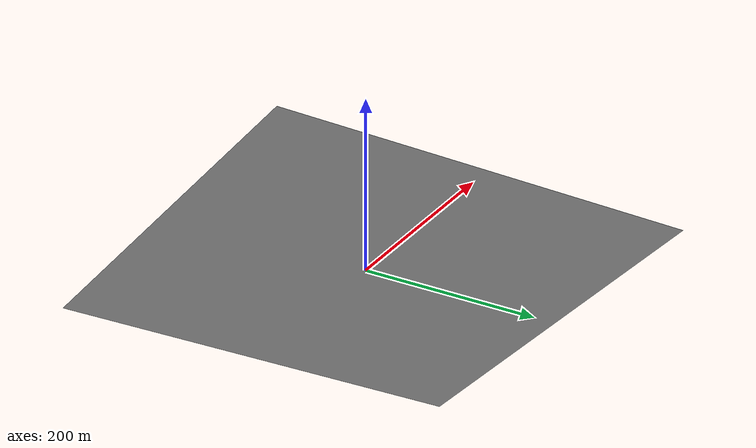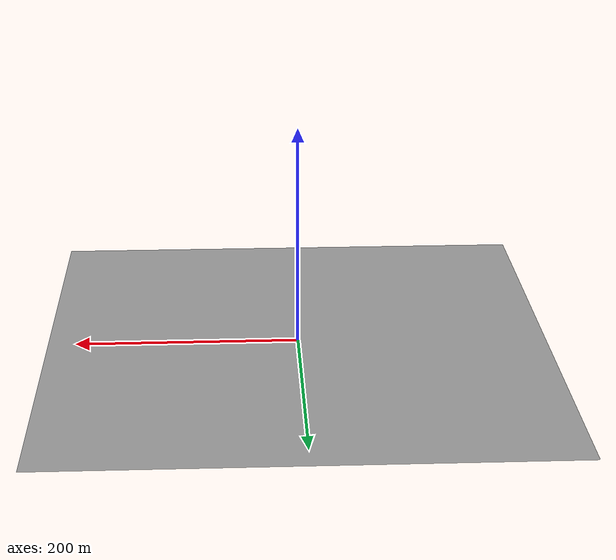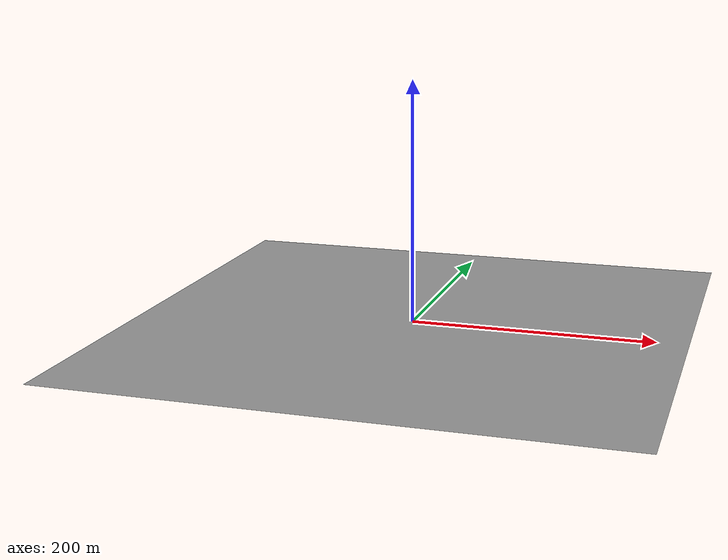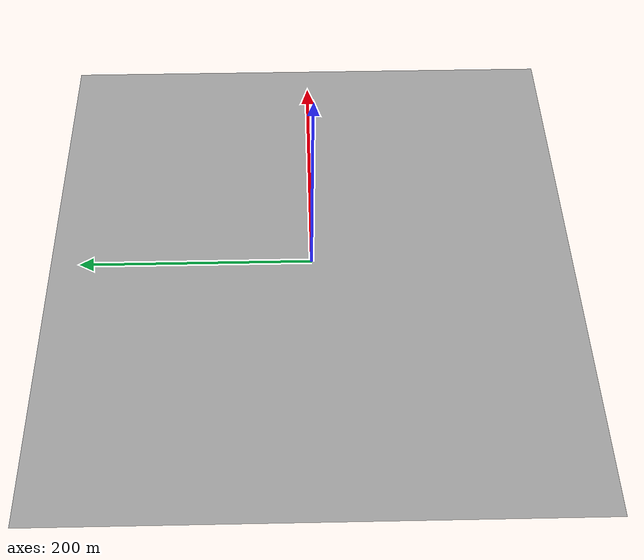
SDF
<?xml version="1.0" ?>
<sdf version="1.5">
  <model name="campus_floor">
    <pose>0 0 0 0 0 0</pose>
    <static>true</static>
    <link name="body">
      <visual name="visual">
        <geometry>
          <mesh><uri>model://campus_floor/media/campus_floor.dae</uri></mesh>
        </geometry>
	      <material>
          <script>
            <uri>model://campus_floor/media/scripts</uri>
            <uri>model://campus_floor/media/Textures</uri>
            <name>grey_floor</name>
          </script>
        </material>
      </visual>
      <collision name="collision">
        <geometry>
          <mesh><uri>model://campus_floor/media/campus_floor.dae</uri></mesh>
        </geometry>
      </collision>
    </link>
  </model>
</sdf>
